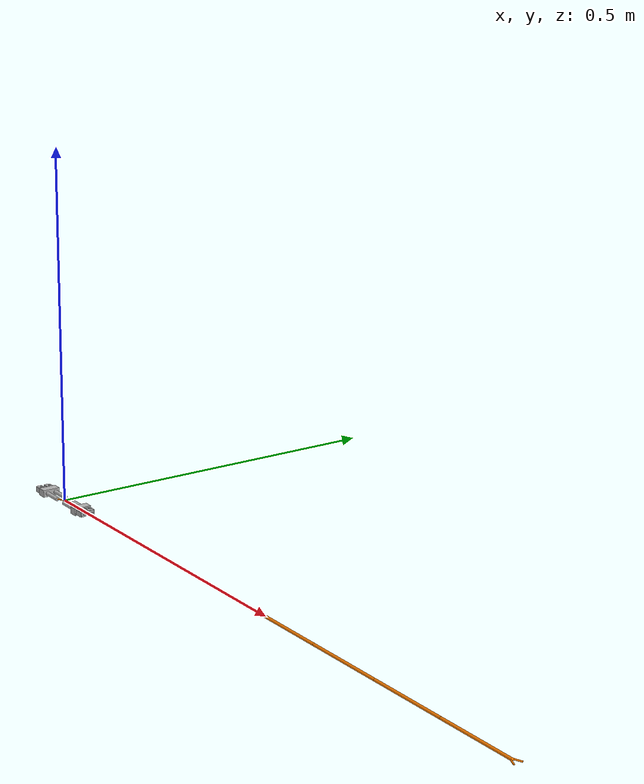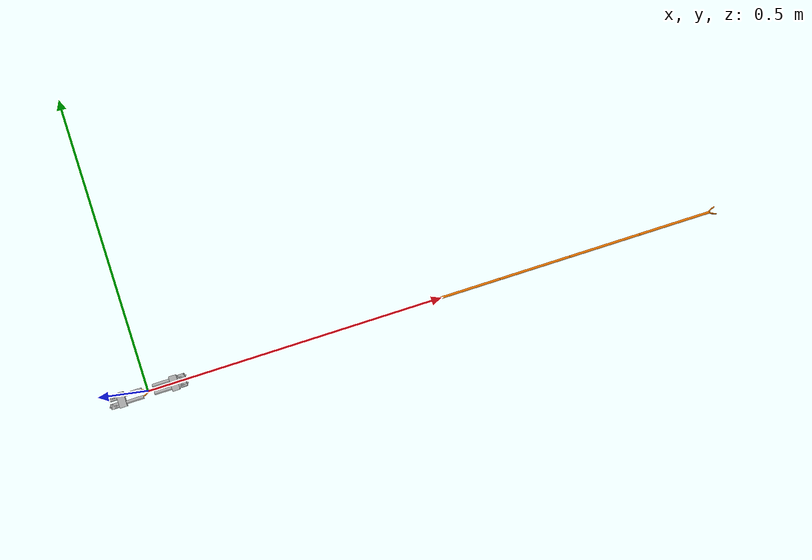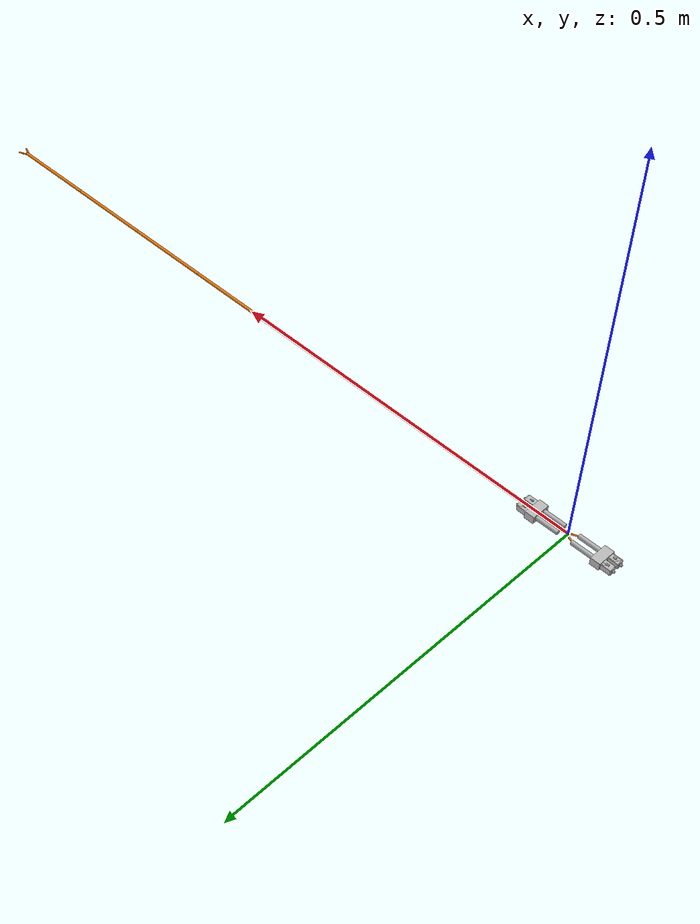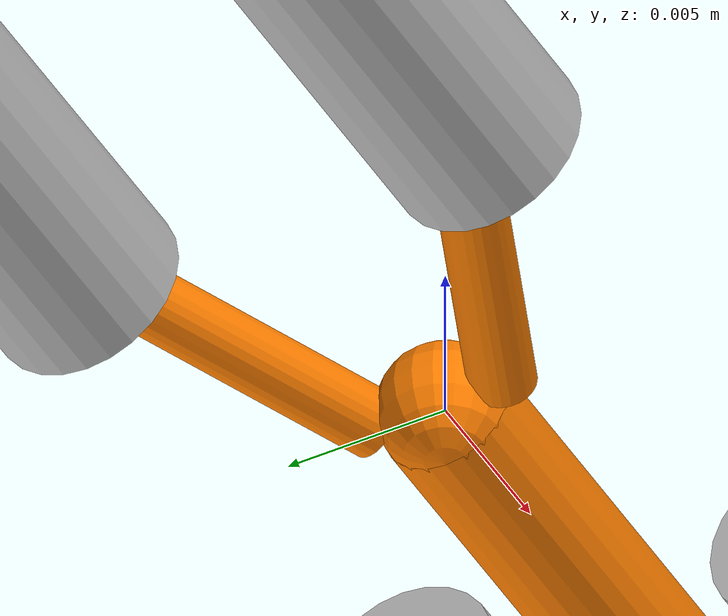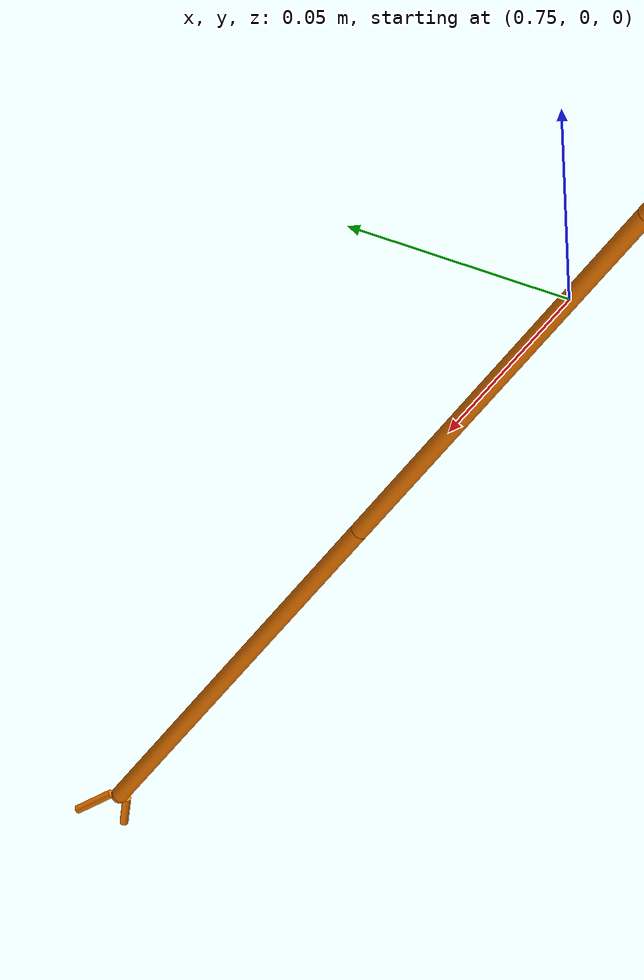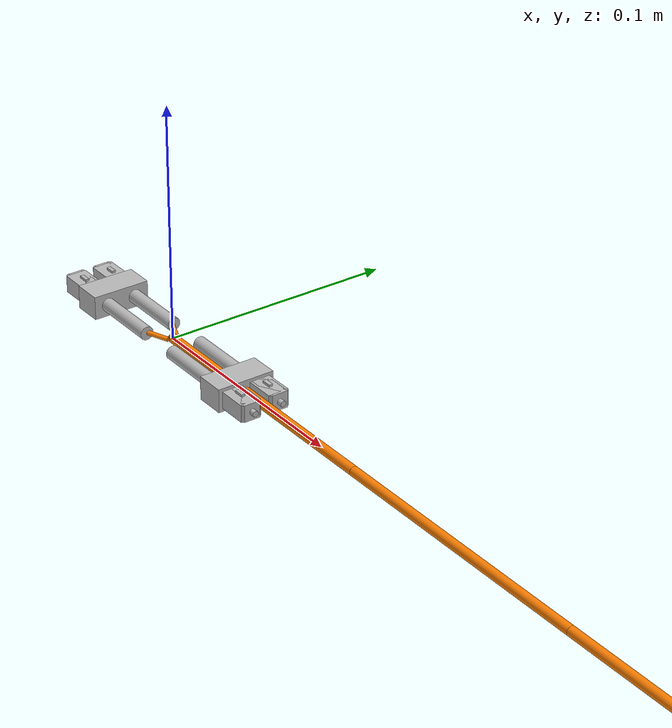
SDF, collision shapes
<?xml version="1.0" ?>
<sdf version="1.9">
  <model name="sc_cable">
    <include merge="true">
      <uri>model://cable_base_b</uri>
    </include>
    <include>
      <name>plug_a</name>
      <uri>model://SC Plug</uri>
      <pose relative_to="cable_connection_0">-0.055 0 0 0 0 3.14159</pose>
    </include>
    <include>
      <name>plug_b</name>
      <uri>model://SC Plug</uri>
      <pose relative_to="cable_connection_1">0.055 0 0 0 0 0</pose>
    </include>
    <joint name="plug_a_joint" type="fixed">
      <parent>cable_connection_0</parent>
      <child>plug_a::sc_plug_link</child>
    </joint>
    <joint name="plug_b_joint" type="fixed">
      <parent>cable_connection_1</parent>
      <child>plug_b::sc_plug_link</child>
    </joint>
  </model>
</sdf>

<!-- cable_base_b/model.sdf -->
<!--
  THIS FILE IS AUTO-GENERATED FROM AN ERB TEMPLATE

  see instructions in 'path_to_ws/src/aic/aic_assets/scripts/cable.sdf.erb'
-->
<sdf version="1.9">
  <model name="cable">
    <link name="cable_end_0">
      <pose>0.000000 0.000000 0.000000 0.000000 -0.000000 0.000000</pose>
      <inertial>
        <pose>0.000000 0.000000 0.000000 0.000000 -0.000000 0.000000</pose>
        <mass>0.0375</mass>
        <inertia>
          <ixx>0.010000</ixx>
          <ixy>0.000000</ixy>
          <ixz>0.000000</ixz>
          <iyy>0.010000</iyy>
          <iyz>0.000000</iyz>
          <izz>0.010000</izz>
        </inertia>
      </inertial>
      <collision name="base_collision">
        <pose>0.000000 0.000000 0.000000 0.000000 0.000000 0.000000</pose>
        <geometry>
          <sphere>
            <radius>0.002</radius>
          </sphere>
        </geometry>
      </collision>
      <visual name="base_vis">
        <pose>0.000000 0.000000 0.000000 0.000000 0.000000 0.000000</pose>
        <geometry>
          <sphere>
            <radius>0.002</radius>
          </sphere>
        </geometry>
        <material>
          <diffuse>1.0 0.5 0.0</diffuse>
          <specular>0.2 0.2 0.2</specular>
          <pbr>
            <metal>
              <roughness>0.05</roughness>
              <metalness>0.01</metalness>
            </metal>
          </pbr>
        </material>
      </visual>
    </link>
    <joint name="joint_end_0" type="ball">
      <pose>0.00000 0.000000 -0.06 0.000000 0 0.000000</pose>
      <child>link_1</child>
      <parent>cable_end_0</parent>
      <axis>
        <dynamics>
          <damping>1.0</damping>
          <spring_stiffness>1.0</spring_stiffness>
        </dynamics>
      </axis>
    </joint>
    <link name="link_1">
      <pose>0.06 0.000000 0.000000 0.000000 1.570790 0.000000</pose>
      <inertial>
        <pose>0.000000 0.000000 0.000000 0.000000 -0.000000 0.000000</pose>
        <mass>0.0375</mass>
        <inertia>
          <ixx>0.010000</ixx>
          <ixy>0.000000</ixy>
          <ixz>0.000000</ixz>
          <iyy>0.010000</iyy>
          <iyz>0.000000</iyz>
          <izz>0.010000</izz>
        </inertia>
      </inertial>
      <collision name="link_1_collision">
        <pose>0.00000 0.000000 0.000000 0.000000 0 0.000000</pose>
        <geometry>
          <cylinder>
            <length>0.12</length>
            <radius>0.002</radius>
          </cylinder>
        </geometry>
      </collision>
      <visual name="link_1_vis">
        <pose>0.00000 0.000000 0.000000 0.000000 0 0.000000</pose>
        <geometry>
          <cylinder>
            <length>0.12</length>
            <radius>0.002</radius>
          </cylinder>
        </geometry>
        <material>
          <diffuse>1.0 0.5 0.0</diffuse>
          <specular>0.2 0.2 0.2</specular>
          <pbr>
            <metal>
              <roughness>0.05</roughness>
              <metalness>0.01</metalness>
            </metal>
          </pbr>
        </material>
      </visual>
      <collision name="sphere_1_collision">
        <pose>0.000000 0.000000 0.06 0.000000 -0.000000 0.000000</pose>
        <geometry>
          <sphere>
            <radius>0.002</radius>
          </sphere>
        </geometry>
      </collision>
      <visual name="sphere_1_vis">
        <pose>0.000000 0.000000 0.06 0.000000 -0.000000 0.000000</pose>
        <geometry>
          <sphere>
            <radius>0.002</radius>
          </sphere>
        </geometry>
        <material>
          <diffuse>1.0 0.5 0.0</diffuse>
          <specular>0.2 0.2 0.2</specular>
          <pbr>
            <metal>
              <roughness>0.05</roughness>
              <metalness>0.01</metalness>
            </metal>
          </pbr>
        </material>
      </visual>
    </link>
    <link name="link_2">
      <pose>0.18 0.000000 0.000000 0.000000 1.570790 0.000000</pose>
      <inertial>
        <pose>0.000000 0.000000 0.000000 0.000000 -0.000000 0.000000</pose>
        <mass>0.0375</mass>
        <inertia>
          <ixx>0.010000</ixx>
          <ixy>0.000000</ixy>
          <ixz>0.000000</ixz>
          <iyy>0.010000</iyy>
          <iyz>0.000000</iyz>
          <izz>0.010000</izz>
        </inertia>
      </inertial>
      <collision name="link_2_collision">
        <pose>0.00000 0.000000 0.000000 0.000000 0 0.000000</pose>
        <geometry>
          <cylinder>
            <length>0.12</length>
            <radius>0.002</radius>
          </cylinder>
        </geometry>
      </collision>
      <visual name="link_2_vis">
        <pose>0.00000 0.000000 0.000000 0.000000 0 0.000000</pose>
        <geometry>
          <cylinder>
            <length>0.12</length>
            <radius>0.002</radius>
          </cylinder>
        </geometry>
        <material>
          <diffuse>1.0 0.5 0.0</diffuse>
          <specular>0.2 0.2 0.2</specular>
          <pbr>
            <metal>
              <roughness>0.05</roughness>
              <metalness>0.01</metalness>
            </metal>
          </pbr>
        </material>
      </visual>
      <collision name="sphere_2_collision">
        <pose>0.000000 0.000000 0.06 0.000000 -0.000000 0.000000</pose>
        <geometry>
          <sphere>
            <radius>0.002</radius>
          </sphere>
        </geometry>
      </collision>
      <visual name="sphere_2_vis">
        <pose>0.000000 0.000000 0.06 0.000000 -0.000000 0.000000</pose>
        <geometry>
          <sphere>
            <radius>0.002</radius>
          </sphere>
        </geometry>
        <material>
          <diffuse>1.0 0.5 0.0</diffuse>
          <specular>0.2 0.2 0.2</specular>
          <pbr>
            <metal>
              <roughness>0.05</roughness>
              <metalness>0.01</metalness>
            </metal>
          </pbr>
        </material>
      </visual>
    </link>
    <link name="link_3">
      <pose>0.3 0.000000 0.000000 0.000000 1.570790 0.000000</pose>
      <inertial>
        <pose>0.000000 0.000000 0.000000 0.000000 -0.000000 0.000000</pose>
        <mass>0.0375</mass>
        <inertia>
          <ixx>0.010000</ixx>
          <ixy>0.000000</ixy>
          <ixz>0.000000</ixz>
          <iyy>0.010000</iyy>
          <iyz>0.000000</iyz>
          <izz>0.010000</izz>
        </inertia>
      </inertial>
      <collision name="link_3_collision">
        <pose>0.00000 0.000000 0.000000 0.000000 0 0.000000</pose>
        <geometry>
          <cylinder>
            <length>0.12</length>
            <radius>0.002</radius>
          </cylinder>
        </geometry>
      </collision>
      <visual name="link_3_vis">
        <pose>0.00000 0.000000 0.000000 0.000000 0 0.000000</pose>
        <geometry>
          <cylinder>
            <length>0.12</length>
            <radius>0.002</radius>
          </cylinder>
        </geometry>
        <material>
          <diffuse>1.0 0.5 0.0</diffuse>
          <specular>0.2 0.2 0.2</specular>
          <pbr>
            <metal>
              <roughness>0.05</roughness>
              <metalness>0.01</metalness>
            </metal>
          </pbr>
        </material>
      </visual>
      <collision name="sphere_3_collision">
        <pose>0.000000 0.000000 0.06 0.000000 -0.000000 0.000000</pose>
        <geometry>
          <sphere>
            <radius>0.002</radius>
          </sphere>
        </geometry>
      </collision>
      <visual name="sphere_3_vis">
        <pose>0.000000 0.000000 0.06 0.000000 -0.000000 0.000000</pose>
        <geometry>
          <sphere>
            <radius>0.002</radius>
          </sphere>
        </geometry>
        <material>
          <diffuse>1.0 0.5 0.0</diffuse>
          <specular>0.2 0.2 0.2</specular>
          <pbr>
            <metal>
              <roughness>0.05</roughness>
              <metalness>0.01</metalness>
            </metal>
          </pbr>
        </material>
      </visual>
    </link>
    <link name="link_4">
      <pose>0.42 0.000000 0.000000 0.000000 1.570790 0.000000</pose>
      <inertial>
        <pose>0.000000 0.000000 0.000000 0.000000 -0.000000 0.000000</pose>
        <mass>0.0375</mass>
        <inertia>
          <ixx>0.010000</ixx>
          <ixy>0.000000</ixy>
          <ixz>0.000000</ixz>
          <iyy>0.010000</iyy>
          <iyz>0.000000</iyz>
          <izz>0.010000</izz>
        </inertia>
      </inertial>
      <collision name="link_4_collision">
        <pose>0.00000 0.000000 0.000000 0.000000 0 0.000000</pose>
        <geometry>
          <cylinder>
            <length>0.12</length>
            <radius>0.002</radius>
          </cylinder>
        </geometry>
      </collision>
      <visual name="link_4_vis">
        <pose>0.00000 0.000000 0.000000 0.000000 0 0.000000</pose>
        <geometry>
          <cylinder>
            <length>0.12</length>
            <radius>0.002</radius>
          </cylinder>
        </geometry>
        <material>
          <diffuse>1.0 0.5 0.0</diffuse>
          <specular>0.2 0.2 0.2</specular>
          <pbr>
            <metal>
              <roughness>0.05</roughness>
              <metalness>0.01</metalness>
            </metal>
          </pbr>
        </material>
      </visual>
      <collision name="sphere_4_collision">
        <pose>0.000000 0.000000 0.06 0.000000 -0.000000 0.000000</pose>
        <geometry>
          <sphere>
            <radius>0.002</radius>
          </sphere>
        </geometry>
      </collision>
      <visual name="sphere_4_vis">
        <pose>0.000000 0.000000 0.06 0.000000 -0.000000 0.000000</pose>
        <geometry>
          <sphere>
            <radius>0.002</radius>
          </sphere>
        </geometry>
        <material>
          <diffuse>1.0 0.5 0.0</diffuse>
          <specular>0.2 0.2 0.2</specular>
          <pbr>
            <metal>
              <roughness>0.05</roughness>
              <metalness>0.01</metalness>
            </metal>
          </pbr>
        </material>
      </visual>
    </link>
    <link name="link_5">
      <pose>0.54 0.000000 0.000000 0.000000 1.570790 0.000000</pose>
      <inertial>
        <pose>0.000000 0.000000 0.000000 0.000000 -0.000000 0.000000</pose>
        <mass>0.0375</mass>
        <inertia>
          <ixx>0.010000</ixx>
          <ixy>0.000000</ixy>
          <ixz>0.000000</ixz>
          <iyy>0.010000</iyy>
          <iyz>0.000000</iyz>
          <izz>0.010000</izz>
        </inertia>
      </inertial>
      <collision name="link_5_collision">
        <pose>0.00000 0.000000 0.000000 0.000000 0 0.000000</pose>
        <geometry>
          <cylinder>
            <length>0.12</length>
            <radius>0.002</radius>
          </cylinder>
        </geometry>
      </collision>
      <visual name="link_5_vis">
        <pose>0.00000 0.000000 0.000000 0.000000 0 0.000000</pose>
        <geometry>
          <cylinder>
            <length>0.12</length>
            <radius>0.002</radius>
          </cylinder>
        </geometry>
        <material>
          <diffuse>1.0 0.5 0.0</diffuse>
          <specular>0.2 0.2 0.2</specular>
          <pbr>
            <metal>
              <roughness>0.05</roughness>
              <metalness>0.01</metalness>
            </metal>
          </pbr>
        </material>
      </visual>
      <collision name="sphere_5_collision">
        <pose>0.000000 0.000000 0.06 0.000000 -0.000000 0.000000</pose>
        <geometry>
          <sphere>
            <radius>0.002</radius>
          </sphere>
        </geometry>
      </collision>
      <visual name="sphere_5_vis">
        <pose>0.000000 0.000000 0.06 0.000000 -0.000000 0.000000</pose>
        <geometry>
          <sphere>
            <radius>0.002</radius>
          </sphere>
        </geometry>
        <material>
          <diffuse>1.0 0.5 0.0</diffuse>
          <specular>0.2 0.2 0.2</specular>
          <pbr>
            <metal>
              <roughness>0.05</roughness>
              <metalness>0.01</metalness>
            </metal>
          </pbr>
        </material>
      </visual>
    </link>
    <link name="link_6">
      <pose>0.6599999999999999 0.000000 0.000000 0.000000 1.570790 0.000000</pose>
      <inertial>
        <pose>0.000000 0.000000 0.000000 0.000000 -0.000000 0.000000</pose>
        <mass>0.0375</mass>
        <inertia>
          <ixx>0.010000</ixx>
          <ixy>0.000000</ixy>
          <ixz>0.000000</ixz>
          <iyy>0.010000</iyy>
          <iyz>0.000000</iyz>
          <izz>0.010000</izz>
        </inertia>
      </inertial>
      <collision name="link_6_collision">
        <pose>0.00000 0.000000 0.000000 0.000000 0 0.000000</pose>
        <geometry>
          <cylinder>
            <length>0.12</length>
            <radius>0.002</radius>
          </cylinder>
        </geometry>
      </collision>
      <visual name="link_6_vis">
        <pose>0.00000 0.000000 0.000000 0.000000 0 0.000000</pose>
        <geometry>
          <cylinder>
            <length>0.12</length>
            <radius>0.002</radius>
          </cylinder>
        </geometry>
        <material>
          <diffuse>1.0 0.5 0.0</diffuse>
          <specular>0.2 0.2 0.2</specular>
          <pbr>
            <metal>
              <roughness>0.05</roughness>
              <metalness>0.01</metalness>
            </metal>
          </pbr>
        </material>
      </visual>
      <collision name="sphere_6_collision">
        <pose>0.000000 0.000000 0.06 0.000000 -0.000000 0.000000</pose>
        <geometry>
          <sphere>
            <radius>0.002</radius>
          </sphere>
        </geometry>
      </collision>
      <visual name="sphere_6_vis">
        <pose>0.000000 0.000000 0.06 0.000000 -0.000000 0.000000</pose>
        <geometry>
          <sphere>
            <radius>0.002</radius>
          </sphere>
        </geometry>
        <material>
          <diffuse>1.0 0.5 0.0</diffuse>
          <specular>0.2 0.2 0.2</specular>
          <pbr>
            <metal>
              <roughness>0.05</roughness>
              <metalness>0.01</metalness>
            </metal>
          </pbr>
        </material>
      </visual>
    </link>
    <link name="link_7">
      <pose>0.78 0.000000 0.000000 0.000000 1.570790 0.000000</pose>
      <inertial>
        <pose>0.000000 0.000000 0.000000 0.000000 -0.000000 0.000000</pose>
        <mass>0.0375</mass>
        <inertia>
          <ixx>0.010000</ixx>
          <ixy>0.000000</ixy>
          <ixz>0.000000</ixz>
          <iyy>0.010000</iyy>
          <iyz>0.000000</iyz>
          <izz>0.010000</izz>
        </inertia>
      </inertial>
      <collision name="link_7_collision">
        <pose>0.00000 0.000000 0.000000 0.000000 0 0.000000</pose>
        <geometry>
          <cylinder>
            <length>0.12</length>
            <radius>0.002</radius>
          </cylinder>
        </geometry>
      </collision>
      <visual name="link_7_vis">
        <pose>0.00000 0.000000 0.000000 0.000000 0 0.000000</pose>
        <geometry>
          <cylinder>
            <length>0.12</length>
            <radius>0.002</radius>
          </cylinder>
        </geometry>
        <material>
          <diffuse>1.0 0.5 0.0</diffuse>
          <specular>0.2 0.2 0.2</specular>
          <pbr>
            <metal>
              <roughness>0.05</roughness>
              <metalness>0.01</metalness>
            </metal>
          </pbr>
        </material>
      </visual>
      <collision name="sphere_7_collision">
        <pose>0.000000 0.000000 0.06 0.000000 -0.000000 0.000000</pose>
        <geometry>
          <sphere>
            <radius>0.002</radius>
          </sphere>
        </geometry>
      </collision>
      <visual name="sphere_7_vis">
        <pose>0.000000 0.000000 0.06 0.000000 -0.000000 0.000000</pose>
        <geometry>
          <sphere>
            <radius>0.002</radius>
          </sphere>
        </geometry>
        <material>
          <diffuse>1.0 0.5 0.0</diffuse>
          <specular>0.2 0.2 0.2</specular>
          <pbr>
            <metal>
              <roughness>0.05</roughness>
              <metalness>0.01</metalness>
            </metal>
          </pbr>
        </material>
      </visual>
    </link>
    <link name="link_8">
      <pose>0.8999999999999999 0.000000 0.000000 0.000000 1.570790 0.000000</pose>
      <inertial>
        <pose>0.000000 0.000000 0.000000 0.000000 -0.000000 0.000000</pose>
        <mass>0.0375</mass>
        <inertia>
          <ixx>0.010000</ixx>
          <ixy>0.000000</ixy>
          <ixz>0.000000</ixz>
          <iyy>0.010000</iyy>
          <iyz>0.000000</iyz>
          <izz>0.010000</izz>
        </inertia>
      </inertial>
      <collision name="link_8_collision">
        <pose>0.00000 0.000000 0.000000 0.000000 0 0.000000</pose>
        <geometry>
          <cylinder>
            <length>0.12</length>
            <radius>0.002</radius>
          </cylinder>
        </geometry>
      </collision>
      <visual name="link_8_vis">
        <pose>0.00000 0.000000 0.000000 0.000000 0 0.000000</pose>
        <geometry>
          <cylinder>
            <length>0.12</length>
            <radius>0.002</radius>
          </cylinder>
        </geometry>
        <material>
          <diffuse>1.0 0.5 0.0</diffuse>
          <specular>0.2 0.2 0.2</specular>
          <pbr>
            <metal>
              <roughness>0.05</roughness>
              <metalness>0.01</metalness>
            </metal>
          </pbr>
        </material>
      </visual>
      <collision name="sphere_8_collision">
        <pose>0.000000 0.000000 0.06 0.000000 -0.000000 0.000000</pose>
        <geometry>
          <sphere>
            <radius>0.002</radius>
          </sphere>
        </geometry>
      </collision>
      <visual name="sphere_8_vis">
        <pose>0.000000 0.000000 0.06 0.000000 -0.000000 0.000000</pose>
        <geometry>
          <sphere>
            <radius>0.002</radius>
          </sphere>
        </geometry>
        <material>
          <diffuse>1.0 0.5 0.0</diffuse>
          <specular>0.2 0.2 0.2</specular>
          <pbr>
            <metal>
              <roughness>0.05</roughness>
              <metalness>0.01</metalness>
            </metal>
          </pbr>
        </material>
      </visual>
    </link>
    <joint name="joint_1" type="ball">
      <pose>0.00000 0.000000 -0.06 0.000000 0 0.000000</pose>
      <parent>link_1</parent>
      <child>link_2</child>
      <axis>
        <dynamics>
          <damping>1.0</damping>
          <spring_stiffness>1.0</spring_stiffness>
        </dynamics>
      </axis>
    </joint>
    <joint name="joint_2" type="ball">
      <pose>0.00000 0.000000 -0.06 0.000000 0 0.000000</pose>
      <parent>link_2</parent>
      <child>link_3</child>
      <axis>
        <dynamics>
          <damping>1.0</damping>
          <spring_stiffness>1.0</spring_stiffness>
        </dynamics>
      </axis>
    </joint>
    <joint name="joint_3" type="ball">
      <pose>0.00000 0.000000 -0.06 0.000000 0 0.000000</pose>
      <parent>link_3</parent>
      <child>link_4</child>
      <axis>
        <dynamics>
          <damping>1.0</damping>
          <spring_stiffness>1.0</spring_stiffness>
        </dynamics>
      </axis>
    </joint>
    <joint name="joint_4" type="ball">
      <pose>0.00000 0.000000 -0.06 0.000000 0 0.000000</pose>
      <parent>link_4</parent>
      <child>link_5</child>
      <axis>
        <dynamics>
          <damping>1.0</damping>
          <spring_stiffness>1.0</spring_stiffness>
        </dynamics>
      </axis>
    </joint>
    <joint name="joint_5" type="ball">
      <pose>0.00000 0.000000 -0.06 0.000000 0 0.000000</pose>
      <parent>link_5</parent>
      <child>link_6</child>
      <axis>
        <dynamics>
          <damping>1.0</damping>
          <spring_stiffness>1.0</spring_stiffness>
        </dynamics>
      </axis>
    </joint>
    <joint name="joint_6" type="ball">
      <pose>0.00000 0.000000 -0.06 0.000000 0 0.000000</pose>
      <parent>link_6</parent>
      <child>link_7</child>
      <axis>
        <dynamics>
          <damping>1.0</damping>
          <spring_stiffness>1.0</spring_stiffness>
        </dynamics>
      </axis>
    </joint>
    <joint name="joint_7" type="ball">
      <pose>0.00000 0.000000 -0.06 0.000000 0 0.000000</pose>
      <parent>link_7</parent>
      <child>link_8</child>
      <axis>
        <dynamics>
          <damping>1.0</damping>
          <spring_stiffness>1.0</spring_stiffness>
        </dynamics>
      </axis>
    </joint>
    <frame name="cable_mount_base">
      <pose>0 0 0 0 0 0</pose>
    </frame>
    <frame name="cable_mount_end">
      <pose>0.96 0 0 0 0 0</pose>
    </frame>
    <link name="cable_connection_0">
      <inertial>
        <pose>0.000000 0.000000 0.000000 0.000000 -0.000000 0.000000</pose>
        <mass>0.01</mass>
        <inertia>
          <ixx>0.010000</ixx>
          <ixy>0.000000</ixy>
          <ixz>0.000000</ixz>
          <iyy>0.010000</iyy>
          <iyz>0.000000</iyz>
          <izz>0.010000</izz>
        </inertia>
      </inertial>
      <pose relative_to="cable_mount_base">0 0 0 0 0 0</pose>
      <collision name="collision_0">
        <pose>-0.005385164807134504 0.004 0 0.3805063771123649 1.57079 0</pose>
        <geometry>
          <cylinder>
            <radius>0.001</radius>
            <length>0.010770329614269008</length>
          </cylinder>
        </geometry>
      </collision>
      <visual name="visual_0">
        <pose>-0.005385164807134504 0.004 0 0.3805063771123649 1.57079 0</pose>
        <geometry>
          <cylinder>
            <radius>0.001</radius>
            <length>0.010770329614269008</length>
          </cylinder>
        </geometry>
        <material>
          <diffuse>1.0 0.5 0.0</diffuse>
          <specular>0.2 0.2 0.2</specular>
          <pbr>
            <metal>
              <roughness>0.05</roughness>
              <metalness>0.01</metalness>
            </metal>
          </pbr>
        </material>
      </visual>
      <collision name="collision_1">
        <pose>-0.005385164807134504 -0.004 0 -0.3805063771123649 1.57079 0</pose>
        <geometry>
          <cylinder>
            <radius>0.001</radius>
            <length>0.010770329614269008</length>
          </cylinder>
        </geometry>
      </collision>
      <visual name="visual_1">
        <pose>-0.005385164807134504 -0.004 0 -0.3805063771123649 1.57079 0</pose>
        <geometry>
          <cylinder>
            <radius>0.001</radius>
            <length>0.010770329614269008</length>
          </cylinder>
        </geometry>
        <material>
          <diffuse>1.0 0.5 0.0</diffuse>
          <specular>0.2 0.2 0.2</specular>
          <pbr>
            <metal>
              <roughness>0.05</roughness>
              <metalness>0.01</metalness>
            </metal>
          </pbr>
        </material>
      </visual>
    </link>
    <link name="cable_connection_1">
      <inertial>
        <pose>0.000000 0.000000 0.000000 0.000000 -0.000000 0.000000</pose>
        <mass>0.01</mass>
        <inertia>
          <ixx>0.010000</ixx>
          <ixy>0.000000</ixy>
          <ixz>0.000000</ixz>
          <iyy>0.010000</iyy>
          <iyz>0.000000</iyz>
          <izz>0.010000</izz>
        </inertia>
      </inertial>
      <pose relative_to="cable_mount_end">0 0 0 0 0 0</pose>
      <collision name="collision_0">
        <pose>0.005385164807134504 -0.004 0 0.3805063771123649 1.57079 0</pose>
        <geometry>
          <cylinder>
            <radius>0.001</radius>
            <length>0.010770329614269008</length>
          </cylinder>
        </geometry>
      </collision>
      <visual name="visual_0">
        <pose>0.005385164807134504 -0.004 0 0.3805063771123649 1.57079 0</pose>
        <geometry>
          <cylinder>
            <radius>0.001</radius>
            <length>0.010770329614269008</length>
          </cylinder>
        </geometry>
        <material>
          <diffuse>1.0 0.5 0.0</diffuse>
          <specular>0.2 0.2 0.2</specular>
          <pbr>
            <metal>
              <roughness>0.05</roughness>
              <metalness>0.01</metalness>
            </metal>
          </pbr>
        </material>
      </visual>
      <collision name="collision_1">
        <pose>0.005385164807134504 0.004 0 -0.3805063771123649 1.57079 0</pose>
        <geometry>
          <cylinder>
            <radius>0.001</radius>
            <length>0.010770329614269008</length>
          </cylinder>
        </geometry>
      </collision>
      <visual name="visual_1">
        <pose>0.005385164807134504 0.004 0 -0.3805063771123649 1.57079 0</pose>
        <geometry>
          <cylinder>
            <radius>0.001</radius>
            <length>0.010770329614269008</length>
          </cylinder>
        </geometry>
        <material>
          <diffuse>1.0 0.5 0.0</diffuse>
          <specular>0.2 0.2 0.2</specular>
          <pbr>
            <metal>
              <roughness>0.05</roughness>
              <metalness>0.01</metalness>
            </metal>
          </pbr>
        </material>
      </visual>
    </link>
    <joint name="joint_connection_end_0" type="ball">
      <pose>0.00000 0.000000 0 0.000000 0 0.000000</pose>
      <parent>cable_end_0</parent>
      <child>cable_connection_0</child>
      <axis>
        <dynamics>
          <damping>1.0</damping>
          <spring_stiffness>1.0</spring_stiffness>
        </dynamics>
      </axis>
    </joint>
    <joint name="joint_connection_end_1" type="ball">
      <pose>0.00000 0.000000 0 0.000000 0 0.000000</pose>
      <parent>link_8</parent>
      <child>cable_connection_1</child>
      <axis>
        <dynamics>
          <damping>1.0</damping>
          <spring_stiffness>1.0</spring_stiffness>
        </dynamics>
      </axis>
    </joint>
  </model>
</sdf>

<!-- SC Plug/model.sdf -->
<sdf version="1.9">
  <model name="SC Plug">
    <link name="sc_plug_link">
      <inertial auto="true">
        <mass>0.04</mass>
      </inertial>
      <visual name="sc_plug_visual">
        <geometry>
          <mesh>
            <uri>sc_plug_visual.glb</uri>
          </mesh>
        </geometry>
      </visual>
      <collision name="housing blue_predeterminado005_collider_box">
        <pose>0.002038 0.006344 4e-06 0.0 0.0 0.0</pose>
        <geometry>
          <box>
            <size>0.012721 0.009 0.0073</size>
          </box>
        </geometry>
      </collision>
      <collision name="housing blue_predeterminado005_collider_box.001">
        <pose>0.002038 -0.006344 4e-06 0.0 0.0 0.0</pose>
        <geometry>
          <box>
            <size>0.012721 0.009 0.0073</size>
          </box>
        </geometry>
      </collision>
      <collision name="housing blue_predeterminado005_collider_box.002">
        <pose>0.002539 0.006344 4e-06 0.0 0.0 0.0</pose>
        <geometry>
          <box>
            <size>0.013722 0.007 0.0073</size>
          </box>
        </geometry>
      </collision>
      <collision name="housing blue_predeterminado005_collider_box.003">
        <pose>0.002539 -0.006344 4e-06 0.0 0.0 0.0</pose>
        <geometry>
          <box>
            <size>0.013722 0.007 0.0073</size>
          </box>
        </geometry>
      </collision>
      <collision name="housing blue_predeterminado005_collider_box.004">
        <pose>0.008191 0.003056 4e-06 0.0 -0.0 -0.785398</pose>
        <geometry>
          <box>
            <size>0.002 0.00141 0.0073</size>
          </box>
        </geometry>
      </collision>
      <collision name="housing blue_predeterminado005_collider_box.005">
        <pose>0.008191 0.009636 4e-06 0.0 -0.0 0.785398</pose>
        <geometry>
          <box>
            <size>0.002 0.00141 0.0073</size>
          </box>
        </geometry>
      </collision>
      <collision name="housing blue_predeterminado005_collider_box.006">
        <pose>0.008191 -0.009636 4e-06 0.0 -0.0 -0.785398</pose>
        <geometry>
          <box>
            <size>0.002 0.00141 0.0073</size>
          </box>
        </geometry>
      </collision>
      <collision name="housing blue_predeterminado005_collider_box.007">
        <pose>0.008191 -0.003056 4e-06 0.0 -0.0 0.785398</pose>
        <geometry>
          <box>
            <size>0.002 0.00141 0.0073</size>
          </box>
        </geometry>
      </collision>
      <collision name="cube002_collider_box">
        <pose>-0.010291 0.0 0.0 0.0 0.0 0.0</pose>
        <geometry>
          <box>
            <size>0.01255 0.025 0.0101</size>
          </box>
        </geometry>
      </collision>
      <collision name="cylinder011_collider_cylinder">
        <pose>-0.031147 -0.00635 -0.0 -0.0 1.570796 0.0</pose>
        <geometry>
          <cylinder>
            <radius>0.0029</radius>
            <length>0.02921</length>
          </cylinder>
        </geometry>
      </collision>
      <collision name="cylinder005_collider_cylinder">
        <pose>-0.029953 0.00635 -0.0 -0.0 1.570796 0.0</pose>
        <geometry>
          <cylinder>
            <radius>0.0029</radius>
            <length>0.031598</length>
          </cylinder>
        </geometry>
      </collision>
      <collision name="ferula_predeterminado005_collider_cylinder">
        <pose>0.00465 -0.00635 0.0 -0.0 1.570796 0.0</pose>
        <geometry>
          <cylinder>
            <radius>0.00125</radius>
            <length>0.014</length>
          </cylinder>
        </geometry>
      </collision>
      <collision name="ferula_predeterminado003_collider_cylinder">
        <pose>0.00465 0.00635 0.0 -0.0 1.570796 0.0</pose>
        <geometry>
          <cylinder>
            <radius>0.00125</radius>
            <length>0.014</length>
          </cylinder>
        </geometry>
      </collision>
      <collision name="side_box_collision">
        <pose>0.00146 -0.00632 0.0042 0.0 0.0 0.0</pose>
        <geometry>
          <box>
            <size>0.00425 0.00162 0.001</size>
          </box>
        </geometry>
      </collision>
      <collision name="side_box_collision_2">
        <pose>0.00146 0.00632 0.0042 0.0 0.0 0.0</pose>
        <geometry>
          <box>
            <size>0.00425 0.00162 0.001</size>
          </box>
        </geometry>
      </collision>
    </link>

    <link name="sc_tip_link">
      <pose>0.01165 0 0 -1.5708 0 -1.5708</pose>
      <inertial>
        <mass>1e-3</mass>
        <inertia>
          <ixx>1e-6</ixx>
          <iyy>1e-6</iyy>
          <izz>1e-6</izz>
        </inertia>
      </inertial>
    </link>

    <joint name="sc_tip_joint" type="fixed">
      <parent>sc_plug_link</parent>
      <child>sc_tip_link</child>
    </joint>

  </model>
</sdf>
